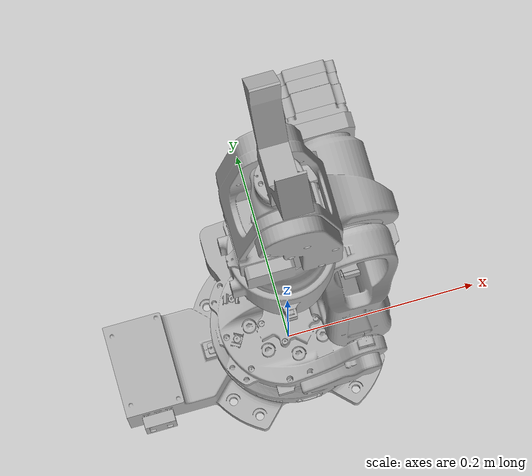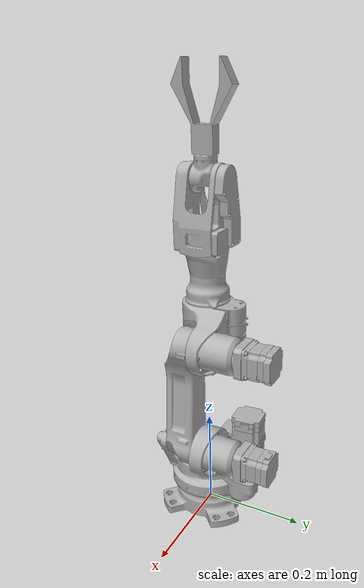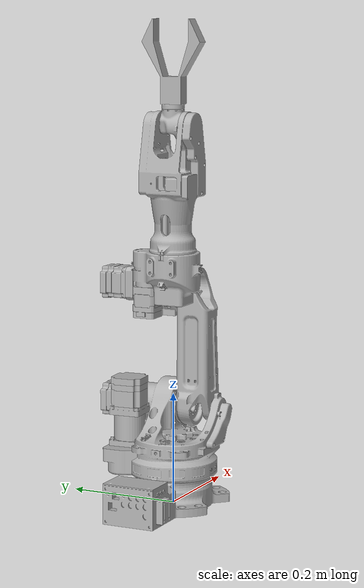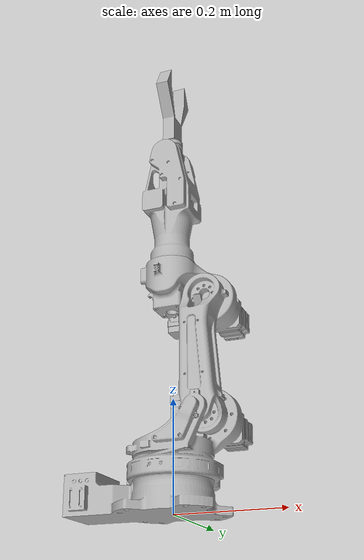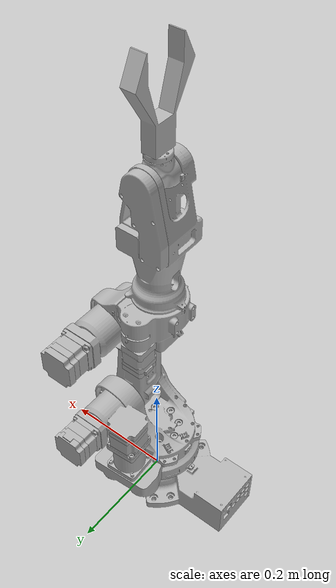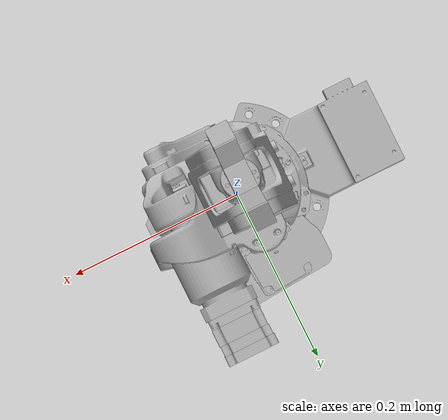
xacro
<?xml version="1.0"?>
<robot xmlns:xacro="http://www.ros.org/wiki/xacro" name="astorino-urdf_gripper">
    <xacro:arg name="initial_positions_file" default="initial_positions.yaml" />

    <!-- Import astorino-urdf_gripper urdf file -->
    <xacro:include filename="$(find astorino-urdf_gripper_description)/urdf/astorino-urdf_gripper.xacro" />

    <!-- Import control_xacro -->
    <xacro:include filename="astorino-urdf_gripper.ros2_control.xacro" />

    <xacro:astorino-urdf_gripper_ros2_control name="FakeSystem" initial_positions_file="$(arg initial_positions_file)"/>

</robot>

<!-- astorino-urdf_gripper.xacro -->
<robot name="astorino-urdf_gripper" xmlns:xacro="http://www.ros.org/wiki/xacro">

<xacro:include filename="$(find astorino-urdf_gripper_description)/urdf/materials.xacro" />
<xacro:include filename="$(find astorino-urdf_gripper_description)/urdf/astorino-urdf_gripper.trans" />
<xacro:include filename="$(find astorino-urdf_gripper_description)/urdf/astorino-urdf_gripper.gazebo" />
<link name="base_link">
  <inertial>
    <origin xyz="-0.03855013947880028 -0.00048078264657518165 0.03716908604146922" rpy="0 0 0"/>
    <mass value="14.531191227416643"/>
    <inertia ixx="0.026552" iyy="0.085153" izz="0.095377" ixy="-0.000806" iyz="-5e-05" ixz="-0.001358"/>
  </inertial>
  <visual>
    <origin xyz="0 0 0" rpy="0 0 0"/>
    <geometry>
      <mesh filename="file://$(find astorino-urdf_gripper_description)/meshes/base_link.stl" scale="0.001 0.001 0.001"/>
    </geometry>
    <material name="silver"/>
  </visual>
  <collision>
    <origin xyz="0 0 0" rpy="0 0 0"/>
    <geometry>
      <mesh filename="file://$(find astorino-urdf_gripper_description)/meshes/base_link.stl" scale="0.001 0.001 0.001"/>
    </geometry>
  </collision>
</link>

<link name="link1_1">
  <inertial>
    <origin xyz="0.015092534373678983 0.03413492024784877 0.03426653944052066" rpy="0 0 0"/>
    <mass value="17.748403733169177"/>
    <inertia ixx="0.08612" iyy="0.064693" izz="0.082969" ixy="-0.00617" iyz="-0.016244" ixz="-0.014077"/>
  </inertial>
  <visual>
    <origin xyz="0.0 0.0 -0.082" rpy="0 0 0"/>
    <geometry>
      <mesh filename="file://$(find astorino-urdf_gripper_description)/meshes/link1_1.stl" scale="0.001 0.001 0.001"/>
    </geometry>
    <material name="silver"/>
  </visual>
  <collision>
    <origin xyz="0.0 0.0 -0.082" rpy="0 0 0"/>
    <geometry>
      <mesh filename="file://$(find astorino-urdf_gripper_description)/meshes/link1_1.stl" scale="0.001 0.001 0.001"/>
    </geometry>
  </collision>
</link>

<link name="link1_others_1">
  <inertial>
    <origin xyz="-0.044438514531046004 -0.01520910206334937 -0.0058800628023180646" rpy="0 0 0"/>
    <mass value="1.5250166401638618"/>
    <inertia ixx="0.003728" iyy="0.003798" izz="0.004002" ixy="-0.00121" iyz="-0.000407" ixz="-0.000243"/>
  </inertial>
  <visual>
    <origin xyz="-0.0625 -0.113 -0.166" rpy="0 0 0"/>
    <geometry>
      <mesh filename="file://$(find astorino-urdf_gripper_description)/meshes/link1_others_1.stl" scale="0.001 0.001 0.001"/>
    </geometry>
    <material name="silver"/>
  </visual>
  <collision>
    <origin xyz="-0.0625 -0.113 -0.166" rpy="0 0 0"/>
    <geometry>
      <mesh filename="file://$(find astorino-urdf_gripper_description)/meshes/link1_others_1.stl" scale="0.001 0.001 0.001"/>
    </geometry>
  </collision>
</link>

<link name="link2_1">
  <inertial>
    <origin xyz="-0.00460986805347538 -0.025566016013792763 0.10733105443871979" rpy="0 0 0"/>
    <mass value="4.6680956197836085"/>
    <inertia ixx="0.027246" iyy="0.027345" izz="0.00318" ixy="-4.7e-05" iyz="-0.000506" ixz="0.000204"/>
  </inertial>
  <visual>
    <origin xyz="-0.0625 -0.0085 -0.166" rpy="0 0 0"/>
    <geometry>
      <mesh filename="file://$(find astorino-urdf_gripper_description)/meshes/link2_1.stl" scale="0.001 0.001 0.001"/>
    </geometry>
    <material name="silver"/>
  </visual>
  <collision>
    <origin xyz="-0.0625 -0.0085 -0.166" rpy="0 0 0"/>
    <geometry>
      <mesh filename="file://$(find astorino-urdf_gripper_description)/meshes/link2_1.stl" scale="0.001 0.001 0.001"/>
    </geometry>
  </collision>
</link>

<link name="link3_1">
  <inertial>
    <origin xyz="-0.034683267323305116 0.030842980553162556 0.014601003077346686" rpy="0 0 0"/>
    <mass value="8.80177438911179"/>
    <inertia ixx="0.02744" iyy="0.020688" izz="0.033403" ixy="-0.008813" iyz="0.004419" ixz="0.003789"/>
  </inertial>
  <visual>
    <origin xyz="-0.0625 -0.0085 -0.386" rpy="0 0 0"/>
    <geometry>
      <mesh filename="file://$(find astorino-urdf_gripper_description)/meshes/link3_1.stl" scale="0.001 0.001 0.001"/>
    </geometry>
    <material name="silver"/>
  </visual>
  <collision>
    <origin xyz="-0.0625 -0.0085 -0.386" rpy="0 0 0"/>
    <geometry>
      <mesh filename="file://$(find astorino-urdf_gripper_description)/meshes/link3_1.stl" scale="0.001 0.001 0.001"/>
    </geometry>
  </collision>
</link>

<link name="link3_others_1">
  <inertial>
    <origin xyz="-0.024482705119657618 -0.01093413143557427 -0.005385449603583947" rpy="0 0 0"/>
    <mass value="0.8259326829646456"/>
    <inertia ixx="0.00185" iyy="0.001311" izz="0.002624" ixy="-0.001068" iyz="-0.000208" ixz="-0.000182"/>
  </inertial>
  <visual>
    <origin xyz="-0.0625 -0.113 -0.386" rpy="0 0 0"/>
    <geometry>
      <mesh filename="file://$(find astorino-urdf_gripper_description)/meshes/link3_others_1.stl" scale="0.001 0.001 0.001"/>
    </geometry>
    <material name="silver"/>
  </visual>
  <collision>
    <origin xyz="-0.0625 -0.113 -0.386" rpy="0 0 0"/>
    <geometry>
      <mesh filename="file://$(find astorino-urdf_gripper_description)/meshes/link3_others_1.stl" scale="0.001 0.001 0.001"/>
    </geometry>
  </collision>
</link>

<link name="link4_1">
  <inertial>
    <origin xyz="0.0016382798114516434 -0.0003709058243818158 0.10420153609282662" rpy="0 0 0"/>
    <mass value="5.425024956478684"/>
    <inertia ixx="0.027191" iyy="0.026626" izz="0.006091" ixy="-2.8e-05" iyz="-0.000116" ixz="0.000274"/>
  </inertial>
  <visual>
    <origin xyz="0.0035 -0.0 -0.456" rpy="0 0 0"/>
    <geometry>
      <mesh filename="file://$(find astorino-urdf_gripper_description)/meshes/link4_1.stl" scale="0.001 0.001 0.001"/>
    </geometry>
    <material name="silver"/>
  </visual>
  <collision>
    <origin xyz="0.0035 -0.0 -0.456" rpy="0 0 0"/>
    <geometry>
      <mesh filename="file://$(find astorino-urdf_gripper_description)/meshes/link4_1.stl" scale="0.001 0.001 0.001"/>
    </geometry>
  </collision>
</link>

<link name="link5_1">
  <inertial>
    <origin xyz="-0.00010936530055836698 0.031241907302688977 0.006956741526719767" rpy="0 0 0"/>
    <mass value="0.2827540533408328"/>
    <inertia ixx="0.0001" iyy="0.00011" izz="0.000105" ixy="-1e-06" iyz="-7e-06" ixz="-0.0"/>
  </inertial>
  <visual>
    <origin xyz="0.0035 0.031 -0.677" rpy="0 0 0"/>
    <geometry>
      <mesh filename="file://$(find astorino-urdf_gripper_description)/meshes/link5_1.stl" scale="0.001 0.001 0.001"/>
    </geometry>
    <material name="silver"/>
  </visual>
  <collision>
    <origin xyz="0.0035 0.031 -0.677" rpy="0 0 0"/>
    <geometry>
      <mesh filename="file://$(find astorino-urdf_gripper_description)/meshes/link5_1.stl" scale="0.001 0.001 0.001"/>
    </geometry>
  </collision>
</link>

<link name="link6_1">
  <inertial>
    <origin xyz="4.516445913807336e-05 -1.870777503897969e-05 -0.0030991217417366546" rpy="0 0 0"/>
    <mass value="0.08207079380299812"/>
    <inertia ixx="2.2e-05" iyy="2.2e-05" izz="1.4e-05" ixy="-0.0" iyz="0.0" ixz="-0.0"/>
  </inertial>
  <visual>
    <origin xyz="0.0035 0.0 -0.70864" rpy="0 0 0"/>
    <geometry>
      <mesh filename="file://$(find astorino-urdf_gripper_description)/meshes/link6_1.stl" scale="0.001 0.001 0.001"/>
    </geometry>
    <material name="silver"/>
  </visual>
  <collision>
    <origin xyz="0.0035 0.0 -0.70864" rpy="0 0 0"/>
    <geometry>
      <mesh filename="file://$(find astorino-urdf_gripper_description)/meshes/link6_1.stl" scale="0.001 0.001 0.001"/>
    </geometry>
  </collision>
</link>

<link name="simple_gripper_v2_1">
  <inertial>
    <origin xyz="4.562322741819003e-15 -1.350499490922586e-15 0.06707471292556177" rpy="0 0 0"/>
    <mass value="0.8575766121982903"/>
    <inertia ixx="0.002244" iyy="0.001539" izz="0.000788" ixy="-0.0" iyz="-0.0" ixz="-0.0"/>
  </inertial>
  <visual>
    <origin xyz="0.0035 0.0 -0.71714" rpy="0 0 0"/>
    <geometry>
      <mesh filename="file://$(find astorino-urdf_gripper_description)/meshes/simple_gripper_v2_1.stl" scale="0.001 0.001 0.001"/>
    </geometry>
    <material name="silver"/>
  </visual>
  <collision>
    <origin xyz="0.0035 0.0 -0.71714" rpy="0 0 0"/>
    <geometry>
      <mesh filename="file://$(find astorino-urdf_gripper_description)/meshes/simple_gripper_v2_1.stl" scale="0.001 0.001 0.001"/>
    </geometry>
  </collision>
</link>
<link name="tcp"/>
<joint name="tcp_joint" type="fixed">
	<origin rpy="0 0 0" xyz="0 0 0.147" />
	<parent link="simple_gripper_v2_1" />
	<child link="tcp" />
	<axis xyz="0 0 0" />
</joint>

<joint name="joint1" type="revolute">
  <origin xyz="0.0 0.0 0.082" rpy="0 0 0"/>
  <parent link="base_link"/>
  <child link="link1_1"/>
  <axis xyz="0.0 0.0 1.0"/>
  <limit upper="2.75762" lower="-2.75762" effort="100" velocity="100"/>
</joint>

<joint name="fix1" type="fixed">
  <origin xyz="0.0625 0.113 0.084" rpy="0 0 0"/>
  <parent link="link1_1"/>
  <child link="link1_others_1"/>
</joint>

<joint name="joint2" type="revolute">
  <origin xyz="0.0625 0.0085 0.084" rpy="0 0 0"/>
  <parent link="link1_1"/>
  <child link="link2_1"/>
  <axis xyz="-0.0 1.0 -0.0"/>
  <limit upper="2.216568" lower="-1.570796" effort="100" velocity="100"/>
</joint>

<joint name="joint3" type="revolute">
  <origin xyz="0.0 0.0 0.22" rpy="0 0 0"/>
  <parent link="link2_1"/>
  <child link="link3_1"/>
  <axis xyz="-0.0 1.0 0.0"/>
  <limit upper="2.932153" lower="0.0" effort="100" velocity="100"/>
</joint>

<joint name="fix3" type="fixed">
  <origin xyz="0.0 0.1045 0.0" rpy="0 0 0"/>
  <parent link="link3_1"/>
  <child link="link3_others_1"/>
</joint>

<joint name="joint4" type="continuous">
  <origin xyz="-0.066 -0.0085 0.07" rpy="0 0 0"/>
  <parent link="link3_1"/>
  <child link="link4_1"/>
  <axis xyz="-0.0 0.0 1.0"/>
</joint>

<joint name="joint5" type="revolute">
  <origin xyz="0.0 -0.031 0.221" rpy="0 0 0"/>
  <parent link="link4_1"/>
  <child link="link5_1"/>
  <axis xyz="0.0 1.0 -0.0"/>
  <limit upper="2.094395" lower="-2.094395" effort="100" velocity="100"/>
</joint>

<joint name="joint6" type="continuous">
  <origin xyz="0.0 0.031 0.03164" rpy="0 0 0"/>
  <parent link="link5_1"/>
  <child link="link6_1"/>
  <axis xyz="-0.0 0.0 1.0"/>
</joint>

<joint name="Rigid 20" type="fixed">
  <origin xyz="0.0 0.0 0.0085" rpy="0 0 0"/>
  <parent link="link6_1"/>
  <child link="simple_gripper_v2_1"/>
</joint>

</robot>

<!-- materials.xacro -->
<robot name="astorino-urdf_gripper" xmlns:xacro="http://www.ros.org/wiki/xacro" >

<material name="silver">
  <color rgba="0.700 0.700 0.700 1.000"/>
</material>

</robot>

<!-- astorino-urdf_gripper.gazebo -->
<robot name="astorino-urdf_gripper" xmlns:xacro="http://www.ros.org/wiki/xacro" >

<xacro:property name="body_color" value="Gazebo/Silver" />

<gazebo>
  <plugin name="control" filename="libgazebo_ros_control.so"/>
</gazebo>
<gazebo reference="base_link">
  <material>${body_color}</material>
  <mu1>0.2</mu1>
  <mu2>0.2</mu2>
  <self_collide>true</self_collide>
  <gravity>true</gravity>
</gazebo>

<gazebo reference="link1_1">
  <material>${body_color}</material>
  <mu1>0.2</mu1>
  <mu2>0.2</mu2>
  <self_collide>true</self_collide>
</gazebo>

<gazebo reference="link1_others_1">
  <material>${body_color}</material>
  <mu1>0.2</mu1>
  <mu2>0.2</mu2>
  <self_collide>true</self_collide>
</gazebo>

<gazebo reference="link2_1">
  <material>${body_color}</material>
  <mu1>0.2</mu1>
  <mu2>0.2</mu2>
  <self_collide>true</self_collide>
</gazebo>

<gazebo reference="link3_1">
  <material>${body_color}</material>
  <mu1>0.2</mu1>
  <mu2>0.2</mu2>
  <self_collide>true</self_collide>
</gazebo>

<gazebo reference="link3_others_1">
  <material>${body_color}</material>
  <mu1>0.2</mu1>
  <mu2>0.2</mu2>
  <self_collide>true</self_collide>
</gazebo>

<gazebo reference="link4_1">
  <material>${body_color}</material>
  <mu1>0.2</mu1>
  <mu2>0.2</mu2>
  <self_collide>true</self_collide>
</gazebo>

<gazebo reference="link5_1">
  <material>${body_color}</material>
  <mu1>0.2</mu1>
  <mu2>0.2</mu2>
  <self_collide>true</self_collide>
</gazebo>

<gazebo reference="link6_1">
  <material>${body_color}</material>
  <mu1>0.2</mu1>
  <mu2>0.2</mu2>
  <self_collide>true</self_collide>
</gazebo>

<gazebo reference="simple_gripper_v2_1">
  <material>${body_color}</material>
  <mu1>0.2</mu1>
  <mu2>0.2</mu2>
  <self_collide>true</self_collide>
</gazebo>

</robot>
